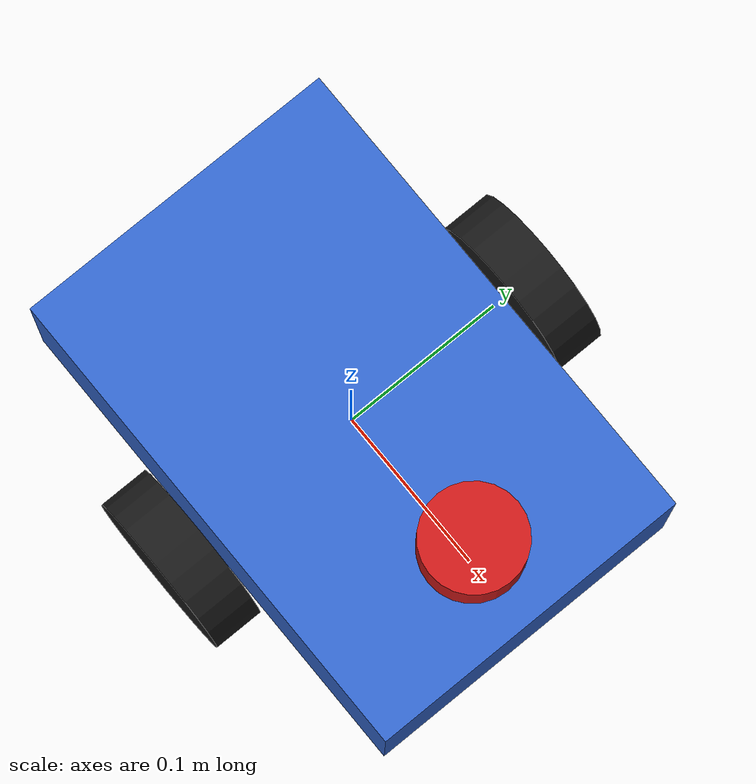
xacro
<?xml version="1.0"?>
<robot name="simple_bot" xmlns:xacro="http://www.ros.org/wiki/xacro">

  <!-- robot_name: sets the topic/TF namespace so two instances in the
       same Gazebo world don't collide (each spawn_robot.launch.py call
       passes a different value, e.g. robot1 / robot2). -->
  <xacro:arg name="robot_name" default="robot1"/>
  <xacro:property name="ns" value="$(arg robot_name)"/>

  <!-- Chassis -->
  <xacro:property name="chassis_length" value="0.30"/>
  <xacro:property name="chassis_width" value="0.20"/>
  <xacro:property name="chassis_height" value="0.10"/>
  <xacro:property name="chassis_mass" value="3.0"/>

  <!-- Wheels -->
  <xacro:property name="wheel_radius" value="0.05"/>
  <xacro:property name="wheel_width" value="0.03"/>
  <xacro:property name="wheel_mass" value="0.3"/>
  <xacro:property name="wheel_separation" value="0.24"/>
  <xacro:property name="wheel_x_offset" value="0.0"/>

  <link name="${ns}/base_link">
    <visual>
      <geometry><box size="${chassis_length} ${chassis_width} ${chassis_height}"/></geometry>
      <origin xyz="0 0 0" rpy="0 0 0"/>
      <material name="chassis_color"><color rgba="0.2 0.4 0.8 1.0"/></material>
    </visual>
    <collision>
      <geometry><box size="${chassis_length} ${chassis_width} ${chassis_height}"/></geometry>
      <origin xyz="0 0 0" rpy="0 0 0"/>
    </collision>
    <inertial>
      <mass value="${chassis_mass}"/>
      <origin xyz="0 0 0"/>
      <inertia ixx="0.05" ixy="0.0" ixz="0.0" iyy="0.08" iyz="0.0" izz="0.10"/>
    </inertial>
  </link>

  <!-- Wheel macro -->
  <xacro:macro name="wheel" params="prefix y_offset">
    <link name="${ns}/${prefix}_wheel">
      <visual>
        <geometry><cylinder radius="${wheel_radius}" length="${wheel_width}"/></geometry>
        <origin xyz="0 0 0" rpy="1.5708 0 0"/>
        <material name="wheel_color"><color rgba="0.1 0.1 0.1 1.0"/></material>
      </visual>
      <collision>
        <geometry><cylinder radius="${wheel_radius}" length="${wheel_width}"/></geometry>
        <origin xyz="0 0 0" rpy="1.5708 0 0"/>
      </collision>
      <inertial>
        <mass value="${wheel_mass}"/>
        <origin xyz="0 0 0"/>
        <inertia ixx="0.001" ixy="0.0" ixz="0.0" iyy="0.001" iyz="0.0" izz="0.001"/>
      </inertial>
    </link>

    <joint name="${ns}/${prefix}_wheel_joint" type="continuous">
      <parent link="${ns}/base_link"/>
      <child link="${ns}/${prefix}_wheel"/>
      <origin xyz="${wheel_x_offset} ${y_offset} 0" rpy="0 0 0"/>
      <axis xyz="0 1 0"/>
    </joint>
  </xacro:macro>

  <xacro:wheel prefix="left" y_offset="${wheel_separation/2}"/>
  <xacro:wheel prefix="right" y_offset="${-wheel_separation/2}"/>

  <!-- Caster (passive, back of chassis) -->
  <link name="${ns}/caster_wheel">
    <visual>
      <geometry><sphere radius="0.025"/></geometry>
      <material name="caster_color"><color rgba="0.3 0.3 0.3 1.0"/></material>
    </visual>
    <collision>
      <geometry><sphere radius="0.025"/></geometry>
    </collision>
    <inertial>
      <mass value="0.1"/>
      <origin xyz="0 0 0"/>
      <inertia ixx="0.0001" ixy="0.0" ixz="0.0" iyy="0.0001" iyz="0.0" izz="0.0001"/>
    </inertial>
  </link>

  <joint name="${ns}/caster_joint" type="fixed">
    <parent link="${ns}/base_link"/>
    <child link="${ns}/caster_wheel"/>
    <origin xyz="-0.12 0 -0.025" rpy="0 0 0"/>
  </joint>

  <!-- 2D Lidar -->
  <link name="${ns}/laser_link">
    <visual>
      <geometry><cylinder radius="0.03" length="0.04"/></geometry>
      <material name="laser_color"><color rgba="0.8 0.1 0.1 1.0"/></material>
    </visual>
    <collision>
      <geometry><cylinder radius="0.03" length="0.04"/></geometry>
    </collision>
    <inertial>
      <mass value="0.05"/>
      <origin xyz="0 0 0"/>
      <inertia ixx="0.00005" ixy="0.0" ixz="0.0" iyy="0.00005" iyz="0.0" izz="0.00005"/>
    </inertial>
  </link>

  <joint name="${ns}/laser_joint" type="fixed">
    <parent link="${ns}/base_link"/>
    <child link="${ns}/laser_link"/>
    <origin xyz="0.1 0 0.08" rpy="0 0 0"/>
  </joint>

  <gazebo>
    <plugin name="diff_drive" filename="libgazebo_ros_diff_drive.so">
      <ros>
        <namespace>${ns}</namespace>
        <remapping>cmd_vel:=cmd_vel_out</remapping>
        <remapping>odom:=odom</remapping>
      </ros>
      <left_joint>${ns}/left_wheel_joint</left_joint>
      <right_joint>${ns}/right_wheel_joint</right_joint>
      <wheel_separation>${wheel_separation}</wheel_separation>
      <wheel_diameter>${wheel_radius*2}</wheel_diameter>
      <max_wheel_torque>10</max_wheel_torque>
      <max_wheel_acceleration>5.0</max_wheel_acceleration>
      <publish_odom>true</publish_odom>
      <publish_odom_tf>true</publish_odom_tf>
      <publish_wheel_tf>false</publish_wheel_tf>
      <odometry_frame>${ns}/odom</odometry_frame>
      <robot_base_frame>${ns}/base_link</robot_base_frame>
    </plugin>
  </gazebo>

  <gazebo reference="${ns}/laser_link">
    <sensor type="ray" name="lidar_2d">
      <pose>0 0 0 0 0 0</pose>
      <visualize>false</visualize>
      <update_rate>15</update_rate>
      <ray>
        <scan>
          <horizontal>
            <samples>360</samples>
            <resolution>1</resolution>
            <min_angle>-3.14159</min_angle>
            <max_angle>3.14159</max_angle>
          </horizontal>
        </scan>
        <range>
          <min>0.12</min>
          <max>10.0</max>
          <resolution>0.01</resolution>
        </range>
        <noise>
          <type>gaussian</type>
          <mean>0.0</mean>
          <stddev>0.01</stddev>
        </noise>
      </ray>
      <plugin name="lidar_2d_plugin" filename="libgazebo_ros_ray_sensor.so">
        <ros>
          <namespace>${ns}</namespace>
          <remapping>~/out:=scan</remapping>
        </ros>
        <output_type>sensor_msgs/LaserScan</output_type>
        <frame_name>${ns}/laser_link</frame_name>
      </plugin>
    </sensor>
  </gazebo>

  <gazebo reference="${ns}/base_link">
    <material>Gazebo/Blue</material>
  </gazebo>

</robot>
